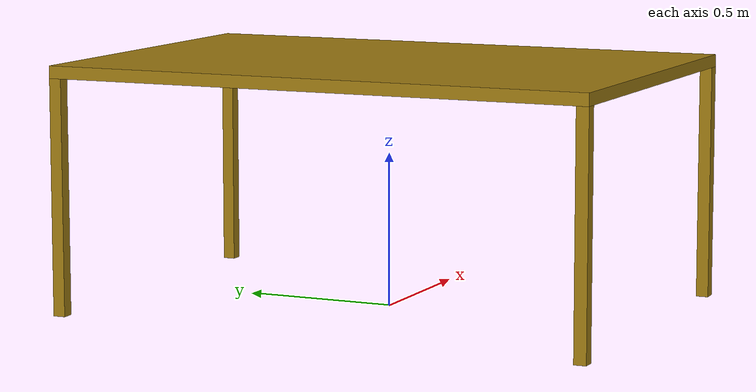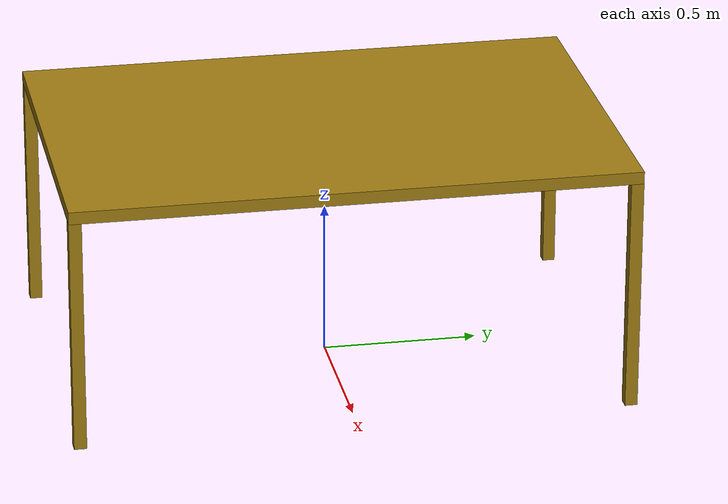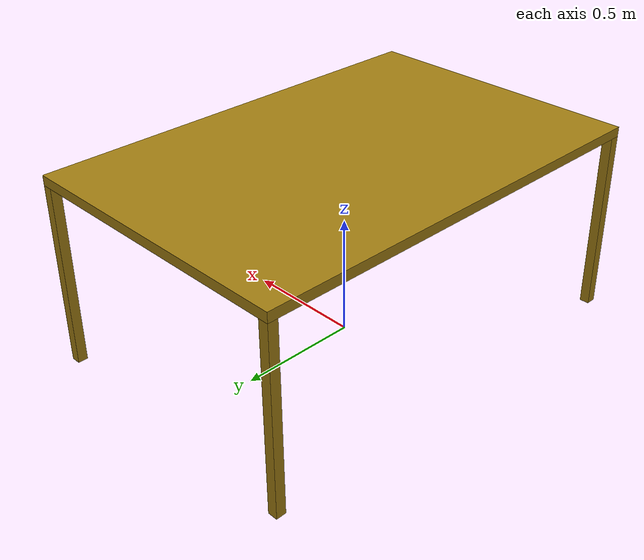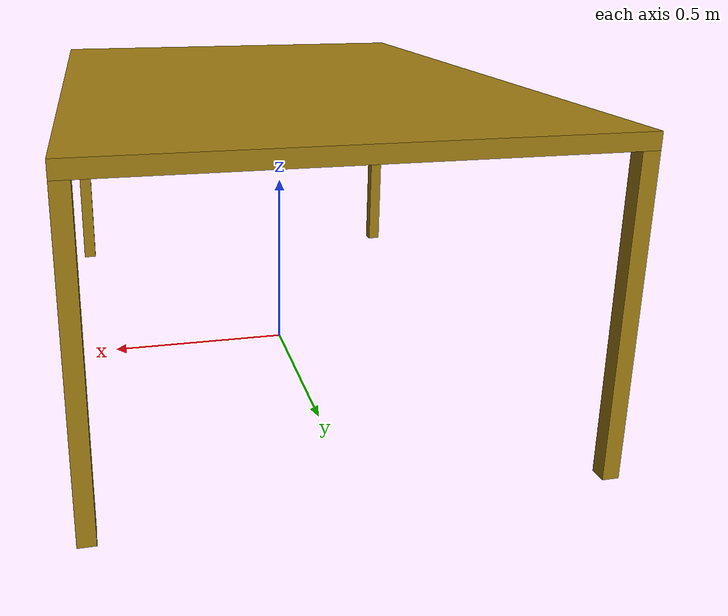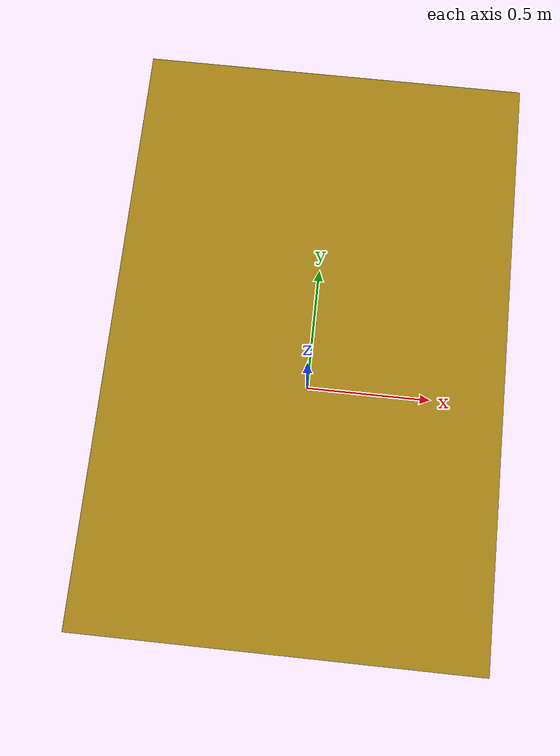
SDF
<?xml version="1.0" ?>
<sdf version="1.8">
  <model name="wrc_long_table">
    <link name="link">
      <inertial>
        <mass>1.0</mass>
      </inertial>

      <collision name="top">
        <pose>0.0 0.0 0.78 0.0 0.0 0.0</pose>
        <geometry>
          <box>
            <size>1.2 1.8 0.04</size>
          </box>
        </geometry>
      </collision>

      <visual name="top_v">
        <pose>0.0 0.0 0.78 0.0 0.0 0.0</pose>
        <geometry>
          <box>
            <size>1.2 1.8 0.04</size>
          </box>
        </geometry>

        <material>
          <ambient>0.63 0.49 0.07 1</ambient>
          <diffuse>0.63 0.49 0.07 1</diffuse>
        </material>
      </visual>

      <collision name="leg1">
        <pose>0.58 0.88 0.38 0.0 0.0 0.0</pose>
        <geometry>
          <box>
            <size>0.04 0.04 0.76</size>
          </box>
        </geometry>
      </collision>

      <visual name="leg1_v">
        <pose>0.58 0.88 0.38 0.0 0.0 0.0</pose>
        <geometry>
          <box>
            <size>0.04 0.04 0.76</size>
          </box>
        </geometry>

        <material>
          <ambient>0.63 0.49 0.07 1</ambient>
          <diffuse>0.63 0.49 0.07 1</diffuse>
        </material>
      </visual>

      <collision name="leg2">
        <pose>0.58 -0.88 0.38 0.0 0.0 0.0</pose>
        <geometry>
          <box>
            <size>0.04 0.04 0.76</size>
          </box>
        </geometry>
      </collision>

      <visual name="leg2_v">
        <pose>0.58 -0.88 0.38 0.0 0.0 0.0</pose>
        <geometry>
          <box>
            <size>0.04 0.04 0.76</size>
          </box>
        </geometry>

        <material>
          <ambient>0.63 0.49 0.07 1</ambient>
          <diffuse>0.63 0.49 0.07 1</diffuse>
        </material>
      </visual>

      <collision name="leg3">
        <pose>-0.58 0.88 0.38 0.0 0.0 0.0</pose>
        <geometry>
          <box>
            <size>0.04 0.04 0.76</size>
          </box>
        </geometry>
      </collision>

      <visual name="leg3_v">
        <pose>-0.58 0.88 0.38 0.0 0.0 0.0</pose>
        <geometry>
          <box>
            <size>0.04 0.04 0.76</size>
          </box>
        </geometry>

        <material>
          <ambient>0.63 0.49 0.07 1</ambient>
          <diffuse>0.63 0.49 0.07 1</diffuse>
        </material>
      </visual>

      <collision name="leg4">
        <pose>-0.58 -0.88 0.38 0.0 0.0 0.0</pose>
        <geometry>
          <box>
            <size>0.04 0.04 0.76</size>
          </box>
        </geometry>
      </collision>

      <visual name="leg4_v">
        <pose>-0.58 -0.88 0.38 0.0 0.0 0.0</pose>
        <geometry>
          <box>
            <size>0.04 0.04 0.76</size>
          </box>
        </geometry>

        <material>
          <ambient>0.63 0.49 0.07 1</ambient>
          <diffuse>0.63 0.49 0.07 1</diffuse>
        </material>
      </visual>
    </link>
  </model>
</sdf>
